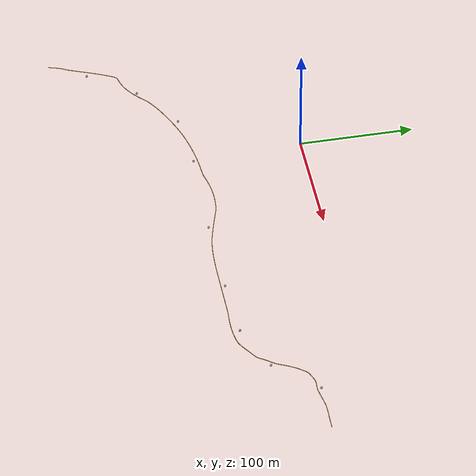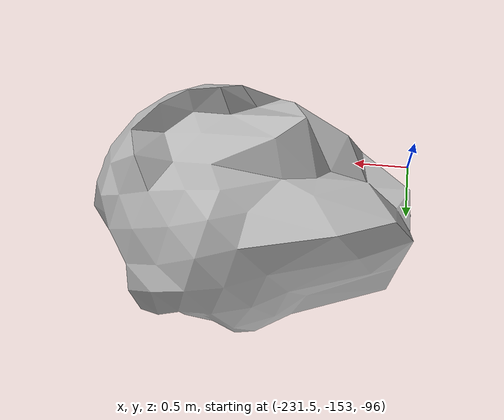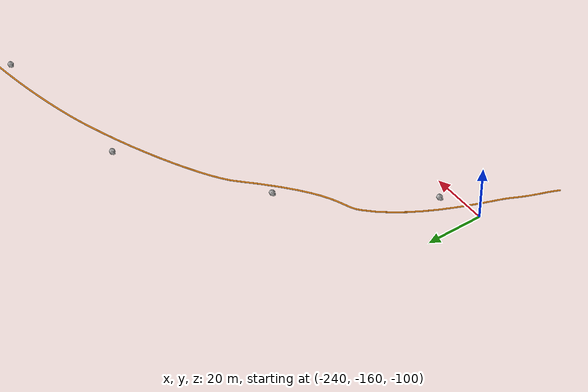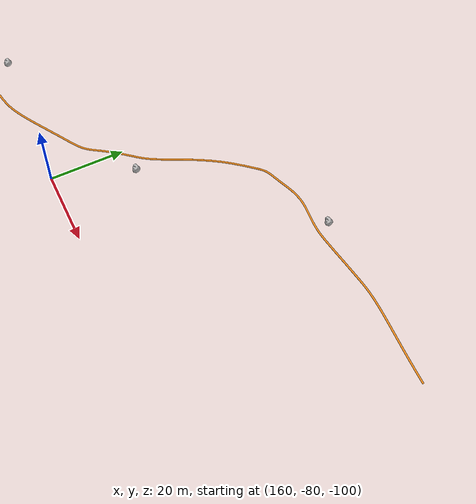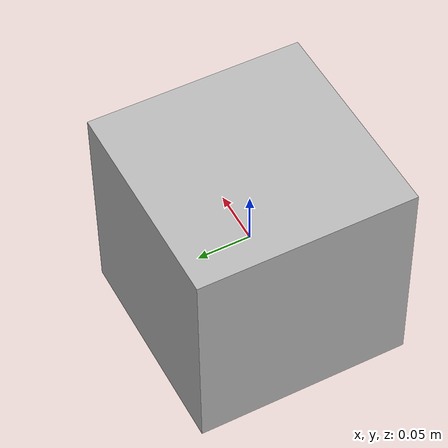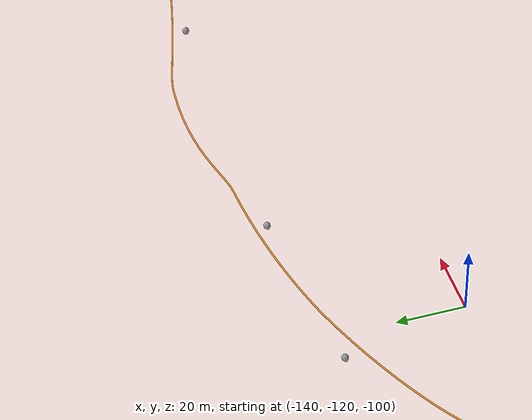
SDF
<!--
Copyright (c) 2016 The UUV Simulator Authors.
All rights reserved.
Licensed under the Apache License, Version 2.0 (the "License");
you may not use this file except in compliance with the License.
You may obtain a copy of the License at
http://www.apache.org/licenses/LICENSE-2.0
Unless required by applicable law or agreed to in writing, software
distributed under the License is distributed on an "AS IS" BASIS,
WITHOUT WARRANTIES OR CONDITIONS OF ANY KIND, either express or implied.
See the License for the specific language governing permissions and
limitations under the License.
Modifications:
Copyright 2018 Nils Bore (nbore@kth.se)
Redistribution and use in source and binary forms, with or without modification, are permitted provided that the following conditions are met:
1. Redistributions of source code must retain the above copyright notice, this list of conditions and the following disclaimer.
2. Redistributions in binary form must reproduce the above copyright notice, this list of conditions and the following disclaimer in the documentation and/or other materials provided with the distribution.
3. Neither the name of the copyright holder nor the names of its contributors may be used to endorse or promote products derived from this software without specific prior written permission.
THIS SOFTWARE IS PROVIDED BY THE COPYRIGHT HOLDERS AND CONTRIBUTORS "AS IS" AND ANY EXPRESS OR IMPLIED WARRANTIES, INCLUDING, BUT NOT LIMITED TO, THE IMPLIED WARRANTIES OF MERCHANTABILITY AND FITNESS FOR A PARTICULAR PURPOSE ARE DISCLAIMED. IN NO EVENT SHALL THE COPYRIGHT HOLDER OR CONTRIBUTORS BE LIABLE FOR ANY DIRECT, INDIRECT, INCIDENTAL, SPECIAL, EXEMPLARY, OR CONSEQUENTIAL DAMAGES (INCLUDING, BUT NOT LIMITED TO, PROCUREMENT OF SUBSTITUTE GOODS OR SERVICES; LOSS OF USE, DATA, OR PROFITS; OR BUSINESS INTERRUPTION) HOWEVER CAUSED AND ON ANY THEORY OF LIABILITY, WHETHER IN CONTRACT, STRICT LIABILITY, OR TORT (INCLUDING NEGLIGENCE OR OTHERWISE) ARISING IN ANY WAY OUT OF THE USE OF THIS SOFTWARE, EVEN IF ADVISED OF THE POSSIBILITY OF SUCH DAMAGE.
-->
<sdf version="1.4">
 <world name="oceans_waves">
  <physics name="default_physics" default="true" type="ode">
   <max_step_size>0.002</max_step_size>
   <real_time_factor>1</real_time_factor>
   <real_time_update_rate>500</real_time_update_rate>
  </physics>
  <scene>
   <ambient>0.01 0.01 0.01 1.0</ambient>
   <sky><clouds><speed>12</speed></clouds></sky>
   <shadows>1</shadows>
  </scene>
  <spherical_coordinates>
   <latitude_deg>56.71897669633431</latitude_deg>
   <longitude_deg>3.515625</longitude_deg>
  </spherical_coordinates>
  <light type="directional" name="sun1">
   <pose>50 0 150 0 0 0</pose>
   <diffuse>1 1 1 1</diffuse>
   <specular>.1 .1 .1 1</specular>
   <direction>0.3 0.3 -1</direction>
   <cast_shadows>false</cast_shadows>
  </light>
  <light type="directional" name="sun_diffuse">
   <pose>-50 0 -150 0 0 0</pose>
   <diffuse>0.6 0.6 0.6 1</diffuse>
   <specular>0 0 0 1</specular>
   <direction>-0.3 -0.3 -1</direction>
   <cast_shadows>false</cast_shadows>
  </light>
  <include><uri>model://pipeline</uri><pose>0 0 -95 0 0 0</pose><name>pipeline</name></include>
  <include><uri>model://large_rock</uri><pose>205 -23 -95 0 0 0</pose><name>beacon_0</name></include>
  <include><uri>model://large_rock</uri><pose>170 -60 -95 0 0 0</pose><name>beacon_1</name></include>
  <include><uri>model://large_rock</uri><pose>123 -78 -95 0 0 0</pose><name>beacon_2</name></include>
  <include><uri>model://large_rock</uri><pose>66 -80 -95 0 0 0</pose><name>beacon_3</name></include>
  <include><uri>model://large_rock</uri><pose>-10 -80 -95 0 0 0</pose><name>beacon_4</name></include>
  <include><uri>model://large_rock</uri><pose>-98 -77 -95 0 0 0</pose><name>beacon_5</name></include>
  <include><uri>model://large_rock</uri><pose>-153 -81 -95 0 0 0</pose><name>beacon_6</name></include>
  <include><uri>model://large_rock</uri><pose>-198 -111 -95 0 0 0</pose><name>beacon_7</name></include>
  <include><uri>model://large_rock</uri><pose>-230 -152 -95 0 0 0</pose><name>beacon_8</name></include>
  <include><uri>model://dummy_laser</uri><name>dummy_laser</name></include>
  <plugin name="underwater_world" filename="libuuv_underwater_world_ros_plugin.so">
   <namespace>hydrodynamics</namespace>
   <constant_current>
    <topic>current_velocity</topic>
    <velocity><mean>0</mean><min>-5</min><max>5</max><mu>0.0</mu><noiseAmp>0.0</noiseAmp></velocity>
    <horizontal_angle>
     <mean>0</mean>
     <min>-1.5707963267948966</min>
     <max>1.5707963267948966</max>
     <mu>0.0</mu>
     <noiseAmp>0.0</noiseAmp>
    </horizontal_angle>
    <vertical_angle>
     <mean>0</mean>
     <min>-1.5707963267948966</min>
     <max>1.5707963267948966</max>
     <mu>0.0</mu>
     <noiseAmp>0.0</noiseAmp>
    </vertical_angle>
   </constant_current>
  </plugin>
 </world>
</sdf>

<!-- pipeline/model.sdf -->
<sdf version="1.5">
  <model name="pipeline">
    <static>true</static>
    <link name="link">
      <collision name="pipeline_collision">
        <pose>0 0 0 0 0 0</pose>
        <geometry>
          <mesh><uri>model://pipeline/meshes/pipeline_collision.stl</uri></mesh>
        </geometry>
        <laser_retro>200</laser_retro>
      </collision>

      <visual name="pipeline_visual">
        <cast_shadows>true</cast_shadows>
        <pose>0 0 0 0 0 0</pose>
        <geometry>
          <mesh><uri>model://pipeline/meshes/pipeline.dae</uri></mesh>
        </geometry>
		<material>
          <script>
            <uri>file://media/materials/scripts/gazebo.material</uri>
            <name>Gazebo/Orange</name>
           </script>
        </material>
		<laser_retro>200</laser_retro>
      </visual>
    </link>
  </model>
</sdf>

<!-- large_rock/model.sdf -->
<sdf version="1.5">
  <model name="large_rock">
    <static>true</static>
    <link name="link">
      <collision name="large_rock_collision">
        <pose>0 0 0 0 0 0</pose>
        <geometry>
          <mesh><uri>model://large_rock/meshes/large_rock_collision.stl</uri></mesh>
        </geometry>
        <laser_retro>200</laser_retro>
      </collision>

      <visual name="large_rock_visual">
        <cast_shadows>true</cast_shadows>
        <pose>0 0 0 0 0 0</pose>
        <geometry>
          <mesh><uri>model://large_rock/meshes/large_rock.dae</uri></mesh>
        </geometry>
        <laser_retro>200</laser_retro>
      </visual>
    </link>
  </model>
</sdf>

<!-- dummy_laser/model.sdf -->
<sdf version="1.5">
  <model name="dummy_laser">
      <pose>0 0 0.1 0 0 0</pose>
      <link name="link">
        <inertial>
          <mass>0.1</mass>
        </inertial>
        <collision name="collision">
          <geometry>
            <box>
              <size>0.2 0.2 0.2</size>
            </box>
          </geometry>
        </collision>
        <visual name="visual">
          <geometry>
            <box>
              <size>0.2 0.2 0.2</size>
            </box>
          </geometry>
        </visual>
        <sensor name="dummy_laser_sensor" type="ray">
          <pose>0.01 0 0.0175 0 -0 0</pose>
          <ray>
            <scan>
              <horizontal>
                <samples>1</samples>
                <resolution>1</resolution>
                <min_angle>-2.26889</min_angle>
                <max_angle>2.268899</max_angle>
              </horizontal>
              <vertical>
                <samples>1</samples>
                <resolution>1</resolution>
                <min_angle>-0.535</min_angle>
                <max_angle>0.186132</max_angle>
              </vertical>
            </scan>
            <range>
              <min>0.1</min>
              <max>10</max>
              <resolution>0.01</resolution>
            </range>
	      </ray>
	      <plugin name="dummy_laser_controller" filename="libRayPlugin.so" />
          <always_on>1</always_on>
          <update_rate>30</update_rate>
          <visualize>false</visualize>
        </sensor>
      </link>
  </model>
</sdf>
